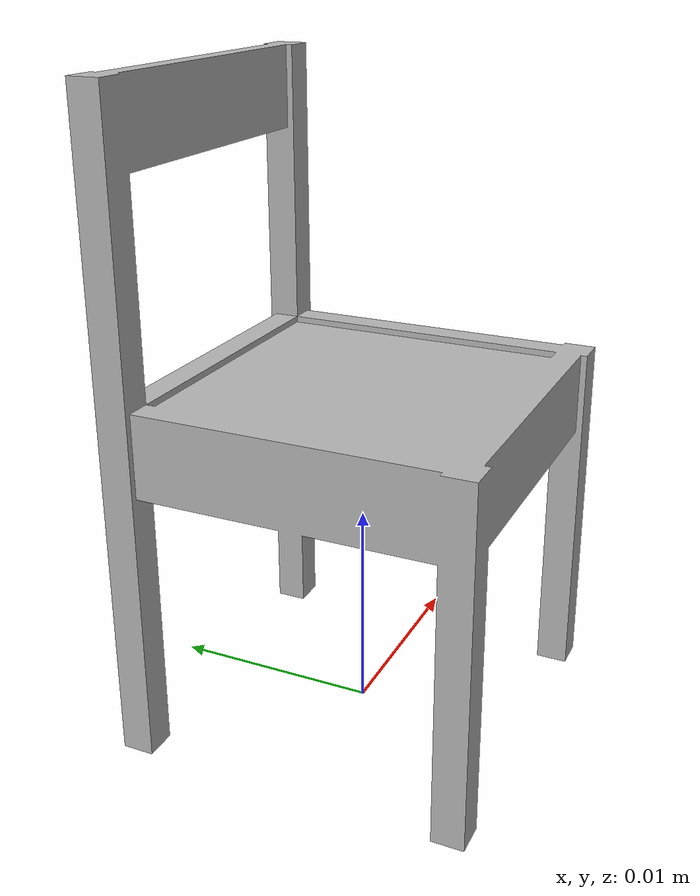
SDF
<?xml version="1.0" ?>
<sdf version="1.5">
  <model name="chair">
    <static>true</static>
    <link name="link">
      <inertial>
	<mass value="10"/>
	<inertia
	  ixx="1"
	  ixy="0.0"
	  ixz="0.0"
	  iyy="1"
	  iyz="0.0"
	  izz="1" />
      </inertial>
      <collision name="collision">
        <geometry>
          <mesh>
            <scale>0.06 0.06 0.06</scale>
            <uri>model://chair/chair.dae</uri>
          </mesh>
        </geometry>
      </collision>
      <visual name="visual">
        <geometry>
          <mesh>
            <scale>0.06 0.06 0.06</scale>
            <uri>model://chair/chair.dae</uri>
          </mesh>
        </geometry>
      </visual>4999
    </link>
  </model>
</sdf>
